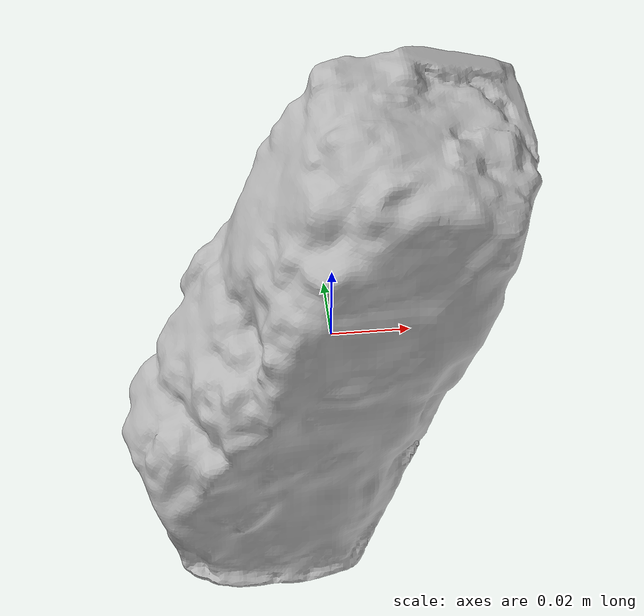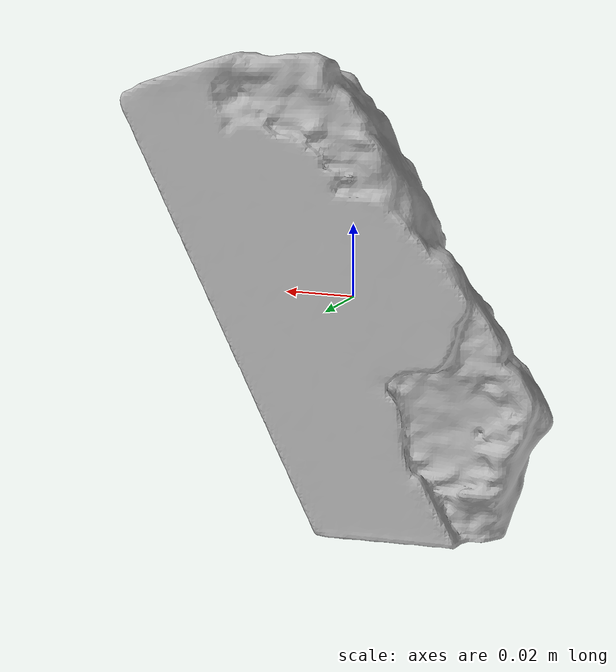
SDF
<?xml version="1.0" ?>
<sdf version="1.5">
  <model name='double_rock_pbr'>
      <pose frame=''>0 0 0 0 0 0</pose>
      <link name='body'>
        <visual name='visual'>
          <geometry>
            <mesh>
              <uri>model://double_rock_pbr_petg/double_rock_pbr_petg.dae</uri>
            </mesh>
          </geometry>
        </visual>
        <collision name='collision'>
          <geometry>
            <mesh>
              <uri>model://double_rock_pbr_petg/double_rock_pbr_petg.dae</uri>
            </mesh>
          </geometry>
          <max_contacts>10</max_contacts>
          <surface>
				<friction>
				  <ode>
					<mu>0.6</mu>
					<mu2>0.6</mu2>
				  </ode>
				  <bullet>
					<friction>0.60</friction>
					<friction2>0.60</friction2>
					<rolling_friction>0.6</rolling_friction>
				  </bullet>
				</friction>
				<contact>
					<ode>
						<min_depth>0.001</min_depth>
					</ode>
				</contact>
				<bounce>
            		<restitution_coefficient>0.9</restitution_coefficient>
            		<threshold>0.1</threshold>
          		</bounce>
			</surface>
        </collision>
        <inertial>
          <mass>0.403494</mass>
          <pose frame=''>0 0 0 0 0 0</pose>
          <inertia>
            <ixx>0.0005253</ixx>
            <ixy>-0.00002597251</ixy>
            <ixz>-0.0001688</ixz>
            <iyy>0.0006321</iyy>
            <iyz>-0.00005406243</iyz>
            <izz>0.0002703</izz>
          </inertia>
        </inertial>
        <self_collide>0</self_collide>
        <enable_wind>0</enable_wind>
        <kinematic>0</kinematic>
      </link>
    </model>
</sdf>
